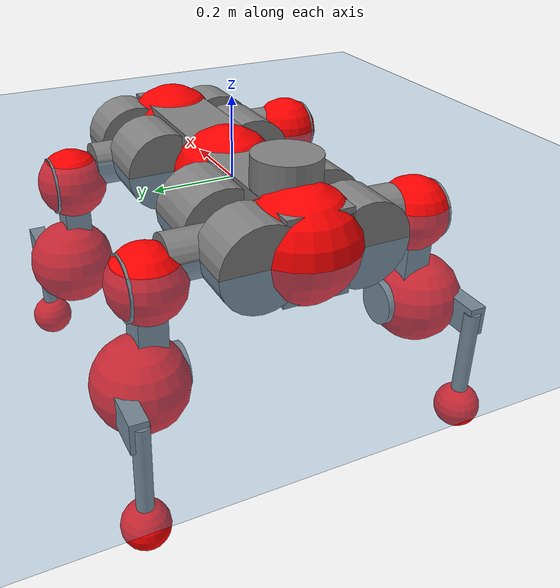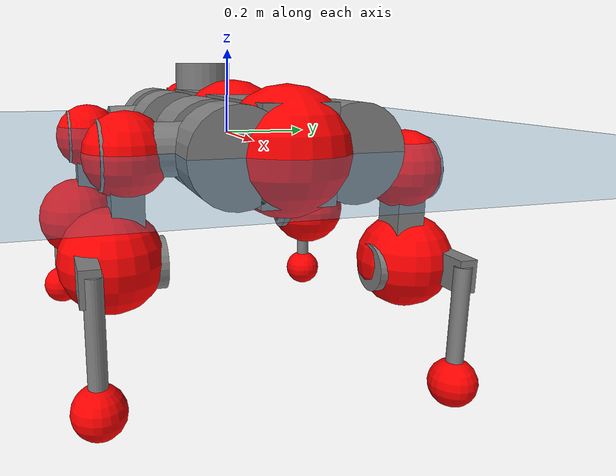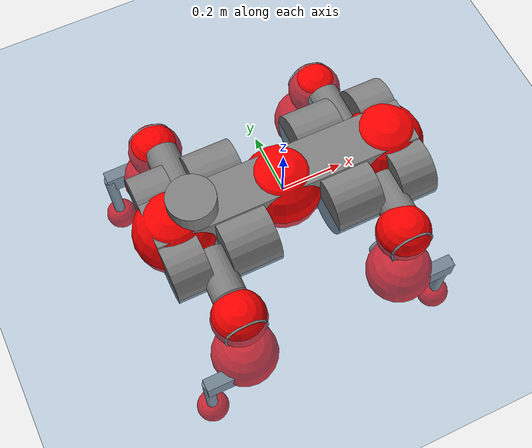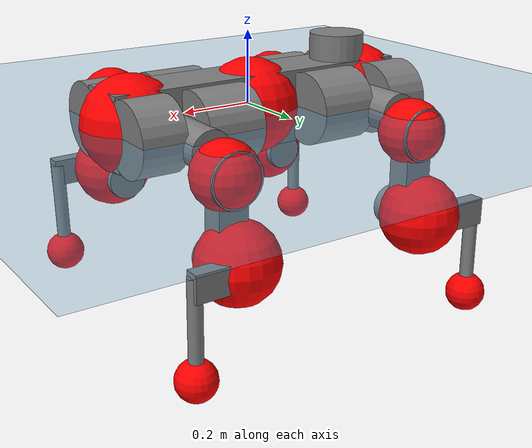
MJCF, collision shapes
<mujoco model="anymal_c">
  <compiler angle="radian" assetdir="assets" balanceinertia="true" inertiafromgeom="false"/>

  <option timestep="0.005" density="1.2" viscosity="2e-05"/>

  <size nkey="1"/>

  <visual>
    <quality shadowsize="8192"/>
    <map shadowclip="0.5"/>
  </visual>

  <default>
    <default class="/">
      <material specular="0" shininess="0.25"/>
      <geom contype="0" conaffinity="0" group="1" solref="-1000 -80"/>
      <site size="0.01 0.005 0.005" group="5"/>
      <general forcelimited="true" forcerange="-80 80" biastype="affine" gainprm="80" biasprm="0 -80 -2"/>
      <default class="anymal_c">
        <joint armature="0.01" damping="0.01" frictionloss="0.1"/>
        <default class="visual">
          <geom type="mesh" group="2"/>
          <default class="visual_zflip"/>
        </default>
        <default class="collision">
          <geom type="cylinder" group="3"/>
          <default class="foot">
            <geom size="0.03 0 0" type="sphere" condim="6" priority="1" friction="0.8 0.02 0.01" solimp="0.015 1 0.03"/>
          </default>
        </default>
      </default>
      <default class="reward_collision_sphere">
        <geom group="5" rgba="1 0 0 1"/>
      </default>
    </default>
  </default>

  <asset>
    <texture type="skybox" colorspace="auto" name="//unnamed_texture_0" builtin="gradient" rgb1="0.95 0.95 0.95" rgb2="0.95 0.95 0.95" width="100" height="600"/>
    <texture type="2d" colorspace="auto" name="texplane" builtin="checker" rgb1="0.345 0.575 0.748" rgb2="0.345 0.575 0.748" markrgb="1 1 1" width="512" height="512"/>
    <texture type="2d" colorspace="linear" name="base" file="base.png"/>
    <texture type="2d" colorspace="linear" name="top_shell" file="top_shell.png"/>
    <texture type="2d" colorspace="linear" name="bottom_shell" file="bottom_shell.png"/>
    <texture type="2d" colorspace="linear" name="remote" file="remote.png"/>
    <texture type="2d" colorspace="linear" name="hatch" file="hatch.png"/>
    <texture type="2d" colorspace="linear" name="handle" file="handle.png"/>
    <texture type="2d" colorspace="linear" name="face" file="face.png"/>
    <texture type="2d" colorspace="linear" name="battery" file="battery.png"/>
    <texture type="2d" colorspace="linear" name="lidar_cage" file="lidar_cage.png"/>
    <texture type="2d" colorspace="linear" name="depth_camera" file="depth_camera.png"/>
    <texture type="2d" colorspace="linear" name="wide_angle_camera" file="wide_angle_camera.png"/>
    <texture type="2d" colorspace="linear" name="lidar" file="lidar.png"/>
    <texture type="2d" colorspace="linear" name="drive" file="drive.png"/>
    <texture type="2d" colorspace="linear" name="hip_l" file="hip_l.png"/>
    <texture type="2d" colorspace="linear" name="shank_l" file="shank_l.png"/>
    <texture type="2d" colorspace="linear" name="foot" file="foot.png"/>
    <texture type="2d" colorspace="linear" name="thigh" file="thigh.png"/>
    <texture type="2d" colorspace="linear" name="shank_r" file="shank_r.png"/>
    <texture type="2d" colorspace="linear" name="hip_r" file="hip_r.png"/>
    <material name="MatPlane" class="/" texture="texplane" texuniform="true" texrepeat="2 2" specular="0.9" shininess="0.5"/>
    <material name="black_plastic" class="/" rgba="0.007 0.007 0.007 1"/>
    <material name="green" class="/" rgba="0.052 0.178 0.033 1"/>
    <material name="red" class="/" rgba="0.178 0.006 0.005 1"/>
    <material name="yellow" class="/" rgba="0.178 0.119 0.006 1"/>
    <material name="lwl" class="/" rgba="0.8 0.8 0.8 1"/>
    <material name="base" class="/" texture="base"/>
    <material name="top_shell" class="/" texture="top_shell"/>
    <material name="bottom_shell" class="/" texture="bottom_shell"/>
    <material name="hip_l" class="/" texture="hip_l"/>
    <material name="thigh" class="/" texture="thigh"/>
    <material name="shank_l" class="/" texture="shank_l"/>
    <material name="foot" class="/" texture="foot"/>
    <material name="hip_r" class="/" texture="hip_r"/>
    <material name="shank" class="/" texture="shank_r"/>
    <material name="hatch" class="/" texture="hatch"/>
    <material name="remote" class="/" texture="remote"/>
    <material name="handle" class="/" texture="handle"/>
    <material name="face" class="/" texture="face"/>
    <material name="depth_camera" class="/" texture="depth_camera"/>
    <material name="wide_angle_camera" class="/" texture="wide_angle_camera"/>
    <material name="battery" class="/" texture="battery"/>
    <material name="lidar_cage" class="/" texture="lidar_cage"/>
    <material name="lidar" class="/" texture="lidar"/>
    <material name="drive" class="/" texture="drive"/>
    <mesh name="base_0" class="/" file="base_0.obj"/>
    <mesh name="base_1" class="/" file="base_1.obj"/>
    <mesh name="base_2" class="/" file="base_2.obj"/>
    <mesh name="base_3" class="/" file="base_3.obj"/>
    <mesh name="base_4" class="/" file="base_4.obj"/>
    <mesh name="base_5" class="/" file="base_5.obj"/>
    <mesh name="top_shell" class="/" file="top_shell.obj"/>
    <mesh name="bottom_shell" class="/" file="bottom_shell.obj"/>
    <mesh name="remote" class="/" file="remote.obj"/>
    <mesh name="handle" class="/" file="handle.obj"/>
    <mesh name="face" class="/" file="face.obj"/>
    <mesh name="wide_angle_camera" class="/" file="wide_angle_camera.obj"/>
    <mesh name="depth_camera" class="/" file="depth_camera.obj"/>
    <mesh name="battery" class="/" file="battery.obj"/>
    <mesh name="lidar_cage" class="/" file="lidar_cage.obj"/>
    <mesh name="lidar" class="/" file="lidar.obj"/>
    <mesh name="drive" class="/" file="drive.obj"/>
    <mesh name="hip_l" class="/" file="hip_l.obj"/>
    <mesh name="thigh" class="/" file="thigh.obj"/>
    <mesh name="shank_l" class="/" file="shank_l.obj"/>
    <mesh name="foot" class="/" file="foot.obj"/>
    <mesh name="hip_r" class="/" file="hip_r.obj"/>
    <mesh name="hatch" class="/" file="hatch.obj"/>
    <mesh name="shank_r" class="/" file="shank_r.obj"/>
  </asset>

  <worldbody>
    <geom name="floor" class="/" size="100 100 0.125" type="plane" group="0" material="MatPlane"/>
    <light name="toplight_shadow" class="/" pos="0 0 5" dir="0.0990148 0.0990148 -0.990148" type="directional" ambient="0.04 0.04 0.04" diffuse="0.55 0.55 0.55" specular="0.12 0.12 0.12"/>
    <light name="toplight_fill" class="/" pos="0 0 5" dir="0.0990148 0.0990148 -0.990148" type="directional" castshadow="false" ambient="0.04 0.04 0.04" diffuse="0.3 0.3 0.3" specular="0.08 0.08 0.08"/>
    <body name="trunk" childclass="anymal_c" pos="0.000439719 0.0129031 -0.00321821" quat="1 0.000163412 0.000149131 0.000127861">
      <inertial pos="-0.00472636 0.0136566 0.0417042" quat="0.42614 0.509433 0.545348 0.51135" mass="25.6578" diaginertia="0.239025 10.197 0.0662898"/>
      <joint name="//unnamed_joint_0" type="free" armature="0" damping="0" frictionloss="0"/>
      <geom name="//unnamed_geom_1" class="visual" material="green" mesh="base_0"/>
      <geom name="//unnamed_geom_2" class="visual" material="yellow" mesh="base_1"/>
      <geom name="//unnamed_geom_3" class="visual" material="red" mesh="base_2"/>
      <geom name="//unnamed_geom_4" class="visual" material="black_plastic" mesh="base_3"/>
      <geom name="//unnamed_geom_5" class="visual" material="lwl" mesh="base_4"/>
      <geom name="//unnamed_geom_6" class="visual" material="base" mesh="base_5"/>
      <geom name="trunk_1" class="collision" size="0.318286 0.0768276 0.0987783" type="box"/>
      <geom name="trunk_2" class="collision" size="0.0987783 0.0795714" pos="0.174652 0.118986 0" quat="0.707107 0 0.707107 0"/>
      <geom name="trunk_3" class="collision" size="0.0987783 0.0795714" pos="-0.174652 0.118986 0" quat="0.707107 0 0.707107 0"/>
      <geom name="trunk_4" class="collision" size="0.0987783 0.0795714" pos="0.174652 -0.118986 0" quat="0.707107 0 0.707107 0"/>
      <geom name="trunk_5" class="collision" size="0.0987783 0.0795714" pos="-0.174652 -0.118986 0" quat="0.707107 0 0.707107 0"/>
      <geom name="//unnamed_geom_12" class="visual" material="top_shell" mesh="top_shell"/>
      <geom name="//unnamed_geom_13" class="visual" material="bottom_shell" mesh="bottom_shell"/>
      <geom name="//unnamed_geom_14" class="visual" material="remote" mesh="remote"/>
      <geom name="//unnamed_geom_15" class="visual" material="handle" mesh="handle"/>
      <geom name="//unnamed_geom_16" class="visual" pos="0.332842 0 0" quat="1 0 0 0" material="face" mesh="face"/>
      <geom name="trunk_6" class="collision" size="0.0603645 0.0768276 0.0987783" pos="0.377007 0 0" type="box"/>
      <geom name="//unnamed_geom_18" class="collision" size="0.0987783 0.0603645" pos="0.377007 0.118986 0" quat="0.707107 0 0.707107 0"/>
      <geom name="//unnamed_geom_19" class="collision" size="0.0987783 0.0603645" pos="0.377007 -0.118986 0" quat="0.707107 0 0.707107 0"/>
      <geom name="//unnamed_geom_20" class="visual" pos="0.370703 0 -0.0229623" quat="0.965926 0 0.258819 0" material="depth_camera" mesh="depth_camera"/>
      <geom name="//unnamed_geom_21" class="visual" pos="0.411937 0 0.0118235" material="wide_angle_camera" mesh="wide_angle_camera"/>
      <geom name="//unnamed_geom_22" class="visual_zflip" pos="-0.332842 0 0" quat="0 0 0 1" material="face" mesh="face"/>
      <geom name="trunk_7" class="collision" size="0.0603645 0.0768276 0.0987783" pos="-0.377007 0 0" quat="0 0 0 1" type="box"/>
      <geom name="//unnamed_geom_24" class="collision" size="0.0987783 0.0603645" pos="-0.377007 -0.118986 0" quat="0 -0.707107 0 0.707107"/>
      <geom name="//unnamed_geom_25" class="collision" size="0.0987783 0.0603645" pos="-0.377007 0.118986 0" quat="0 -0.707107 0 0.707107"/>
      <geom name="//unnamed_geom_26" class="visual" pos="-0.370703 0 -0.0229623" quat="0 -0.258819 0 0.965926" material="depth_camera" mesh="depth_camera"/>
      <geom name="//unnamed_geom_27" class="visual_zflip" pos="-0.411937 0 0.0118235" quat="0 0 0 1" material="wide_angle_camera" mesh="wide_angle_camera"/>
      <geom name="//unnamed_geom_28" class="visual" material="battery" mesh="battery"/>
      <geom name="//unnamed_geom_29" class="visual" pos="0 0.141734 0.0230442" quat="0.683013 -0.183013 0.183013 0.683013" material="depth_camera" mesh="depth_camera"/>
      <geom name="//unnamed_geom_30" class="visual" pos="0 -0.141734 0.0230442" quat="0.683013 0.183013 0.183013 -0.683013" material="depth_camera" mesh="depth_camera"/>
      <geom name="//unnamed_geom_31" class="visual" pos="-0.292291 0 0.0580511" quat="1 0 0 0" material="lidar_cage" mesh="lidar_cage"/>
      <geom name="trunk_8" class="collision" size="0.0768276 0.0658522" pos="-0.292291 0 0.10544"/>
      <geom name="//unnamed_geom_33" class="visual" pos="-0.292291 0.000352332 0.112311" quat="0.707107 0 0 -0.707107" material="lidar" mesh="lidar"/>
      <geom name="//unnamed_geom_34" class="visual" pos="0.240818 0.176456 1.56975e-08" quat="0.258819 0.965926 0 0" material="drive" mesh="drive"/>
      <geom name="//unnamed_geom_35" class="visual" pos="0.240818 -0.176456 -1.56975e-08" quat="0.258819 -0.965926 0 0" material="drive" mesh="drive"/>
      <geom name="//unnamed_geom_36" class="visual" pos="-0.240818 0.176456 -1.56975e-08" quat="0 0 0.965926 -0.258819" material="drive" mesh="drive"/>
      <geom name="//unnamed_geom_37" class="visual" pos="-0.240818 -0.176456 1.56975e-08" quat="0 0 -0.965926 -0.258819" material="drive" mesh="drive"/>
      <geom name="//unnamed_geom_38" class="visual" pos="0.0931475 0 0.0576562" quat="1 0 0 0" material="hatch" mesh="hatch"/>
      <geom name="//unnamed_geom_39" class="reward_collision_sphere" size="0.131704"/>
      <geom name="//unnamed_geom_40" class="reward_collision_sphere" size="0.131704" pos="0.361348 0 0"/>
      <geom name="//unnamed_geom_41" class="reward_collision_sphere" size="0.131704" pos="-0.361348 0 0"/>
      <site name="imu" pos="0.136956 -0.036697 0.100987" size="0.0109754"/>
      <camera name="track" pos="0 -3.39961 0" quat="0.707107 0.707107 0 0" mode="trackcom"/>
      <camera name="ego_camera" pos="0.361348 0 -0.0315924" quat="-0.5 -0.5 0.5 0.5"/>
      <body name="LF_HIP" pos="0.229481 0.159656 -0.014843" quat="0.260465 0.965462 -0.00176335 0.00620446">
        <inertial pos="0.0498539 -0.0264635 -0.0159092" quat="-0.134145 0.70001 -0.127068 0.689815" mass="4.35319" diaginertia="0.00190988 0.0760701 0.000965565"/>
        <joint name="LF_HAA" pos="0 0 0" axis="0.999993 0.00288848 0.00220837" range="-1.06883 0.295341" armature="0.0129304" damping="0.0734264" frictionloss="0.046767"/>
        <geom name="//unnamed_geom_42" class="visual" pos="0 0.000923412 -0.00015167" quat="0.258819 -0.965926 0 0" material="hip_l" mesh="hip_l"/>
        <geom name="//unnamed_geom_43" class="visual" pos="0.0480994 -0.0697673 -0.0335493" quat="0.183013 -0.683013 0.683013 0.183013" material="drive" mesh="drive"/>
        <geom name="//unnamed_geom_44" class="collision" size="0.0548768 0.0768276" pos="0.0480995 -0.0203293 -0.00545364" quat="-0.353553 -0.612372 0.612372 -0.353553"/>
        <body name="LF_THIGH" pos="0.0474724 -0.140587 -0.0279431" quat="0.1872 -0.679885 0.685432 0.181373">
          <inertial pos="0.0127763 -0.0105578 -0.198434" quat="0.985251 -0.060688 -0.118621 0.107363" mass="4.0474" diaginertia="0.00938616 0.41307 0.00135348"/>
          <joint name="LF_HFE" pos="0 0 0" axis="0.997836 -0.00381711 0.0656476" range="-3.32091 2.829" armature="0.00357352" damping="0" frictionloss="0.0673546"/>
          <geom name="//unnamed_geom_45" class="visual" pos="-0.0178429 -2.81163e-05 0" quat="0.707107 0 0 -0.707107" material="thigh" mesh="thigh"/>
          <geom name="//unnamed_geom_46" class="collision" size="0.0713399 0.0439015" pos="0.0321198 0 0" quat="0.5 0.5 -0.5 -0.5"/>
          <geom name="//unnamed_geom_47" class="collision" size="0.0411576 0.0329261 0.155097" pos="0.0240899 0 -0.111611" quat="0.707107 0 0 -0.707107" type="box"/>
          <geom name="//unnamed_geom_48" class="visual" pos="0.0805405 0 -0.225096" quat="1 0 0 0" material="drive" mesh="drive"/>
          <geom name="//unnamed_geom_49" class="collision" size="0.0548768 0.0768276" pos="0.0243308 0 -0.225096" quat="0.707107 0 0.707107 0"/>
          <geom name="//unnamed_geom_50" class="reward_collision_sphere" size="0.0878029" pos="0.0200749 0 0"/>
          <body name="LF_SHANK" pos="0.0875074 0.0153922 -0.217378" quat="0.999988 4.28291e-06 0.00478192 0.000893317">
            <inertial pos="-0.00681445 -0.103434 -0.0470093" quat="0.992933 -0.115714 -0.00285465 -0.0261841" mass="0.810317" diaginertia="0.00390531 0.104301 0.000411117"/>
            <joint name="LF_KFE" pos="0 0 0" axis="0.99998 -0.00587079 -0.00229285" range="-2.81102 3.12209" armature="0.0166432" damping="0.0152148" frictionloss="0.108981"/>
            <geom name="//unnamed_geom_51" class="visual" pos="-0.00581819 -0.0310229 0" quat="0.707107 0 0 -0.707107" material="shank_l" mesh="shank_l"/>
            <geom name="LF_kfe_act" class="collision" size="0.0658522 0.0219507" pos="0.0160599 0 0" quat="0.5 0.5 -0.5 -0.5"/>
            <geom name="//unnamed_geom_53" class="collision" size="0.0631073 0.0370419 0.0208532" pos="0.0160599 -0.097737 0" quat="0.5 0.5 -0.5 -0.5" type="box"/>
            <geom name="//unnamed_geom_54" class="visual" pos="0.0104805 -0.159495 -0.266932" quat="0.382683 0 0 -0.92388" material="foot" mesh="foot"/>
            <geom name="LF_calf" class="collision" size="0.0192069 0.155029" pos="0.0104791 -0.149498 -0.133466" quat="0.707107 0 0 -0.707107"/>
            <geom name="LF_foot" class="foot" size="0.0329691" pos="0.0104791 -0.149498 -0.249162" quat="0.707107 0 0 -0.707107"/>
            <geom name="//unnamed_geom_57" class="reward_collision_sphere" size="0.109754" pos="-0.0401498 0 0"/>
            <geom name="//unnamed_geom_58" class="reward_collision_sphere" size="0.0548768" pos="0.0104791 -0.149498 -0.249162"/>
            <site name="LF_foot" class="foot" pos="0.0104791 -0.149498 -0.249162" quat="0.707107 0 0 -0.707107" size="0.0109754"/>
          </body>
        </body>
      </body>
      <body name="RF_HIP" pos="0.239873 -0.167716 0.00835073" quat="0.259019 -0.965872 -0.00060362 -5.02112e-05">
        <inertial pos="0.0531681 0.0204295 -0.0123011" quat="0.139566 0.675516 0.139521 0.710446" mass="4.17278" diaginertia="0.00204038 0.0818423 0.000811099"/>
        <joint name="RF_HAA" pos="0 0 0" axis="0.998411 0.0304546 0.0474106" stiffness="0.0363964" range="-0.4823 0.757049" armature="0.00772546" damping="0" frictionloss="0.0691075"/>
        <geom name="//unnamed_geom_59" class="visual" pos="0 -0.000923404 -0.000151669" quat="0.258819 0.965926 0 0" material="hip_r" mesh="hip_r"/>
        <geom name="//unnamed_geom_60" class="visual" pos="0.0480995 0.0697673 -0.0335493" quat="0.183013 0.683013 0.683013 -0.183013" material="drive" mesh="drive"/>
        <geom name="//unnamed_geom_61" class="collision" size="0.0548768 0.0768276" pos="0.0480995 0.0203293 -0.00545364" quat="-0.353553 0.612372 0.612372 0.353553"/>
        <body name="RF_THIGH" pos="0.0327211 0.106442 -0.0433425" quat="0.184091 0.67985 0.686099 -0.18216">
          <inertial pos="0.0340322 0.0170601 -0.191459" quat="0.990529 -0.0578025 -0.0863251 0.0897777" mass="2.85928" diaginertia="0.00805215 0.350303 0.00117055"/>
          <joint name="RF_HFE" pos="0 0 0" axis="0.999963 0.00454875 -0.00726871" stiffness="0.0378779" range="-2.82512 3.14312" armature="0.00901056" damping="0" frictionloss="0.111662"/>
          <geom name="//unnamed_geom_62" class="visual" pos="-0.0178429 -2.81163e-05 0" quat="0.707107 0 0 -0.707107" material="thigh" mesh="thigh"/>
          <geom name="//unnamed_geom_63" class="collision" size="0.0713399 0.0439015" pos="0.0321198 0 0" quat="0.5 0.5 0.5 0.5"/>
          <geom name="//unnamed_geom_64" class="collision" size="0.0411576 0.0329261 0.155097" pos="0.0240899 0 -0.111611" quat="0.707107 0 0 0.707107" type="box"/>
          <geom name="//unnamed_geom_65" class="visual" pos="0.0805405 0 -0.225096" quat="1 0 0 0" material="drive" mesh="drive"/>
          <geom name="//unnamed_geom_66" class="collision" size="0.0548768 0.0768276" pos="0.0243308 0 -0.225096" quat="0.707107 0 0.707107 0"/>
          <geom name="//unnamed_geom_67" class="reward_collision_sphere" size="0.0878029" pos="0.0200749 0 0"/>
          <body name="RF_SHANK" pos="0.0964927 -0.00277191 -0.214378" quat="0.999975 -0.0042898 0.00187248 0.00537359">
            <inertial pos="-0.0033521 0.104036 -0.0754004" quat="0.991783 0.102784 0.0181392 0.0739847" mass="0.75354" diaginertia="0.00318381 0.132081 0.000316717"/>
            <joint name="RF_KFE" pos="0 0 0" axis="0.996463 0.0518785 0.0661128" stiffness="0.0416688" range="-3.22651 3.12871" armature="0.00313955" damping="0" frictionloss="0.187211"/>
            <geom name="//unnamed_geom_68" class="visual" pos="-0.00581816 0.0310228 0" quat="0.707107 0 0 0.707107" material="shank" mesh="shank_r"/>
            <geom name="RF_kfe_act" class="collision" size="0.0658522 0.0219507" pos="0.0160599 0 0" quat="0.5 0.5 0.5 0.5"/>
            <geom name="//unnamed_geom_70" class="collision" size="0.0631073 0.0370419 0.0208532" pos="0.0160599 0.097737 0" quat="0.5 0.5 0.5 0.5" type="box"/>
            <geom name="//unnamed_geom_71" class="visual" pos="0.0104777 0.159495 -0.266932" quat="0.382683 0 0 0.92388" material="foot" mesh="foot"/>
            <geom name="RF_calf" class="collision" size="0.0192069 0.155029" pos="0.0104791 0.149498 -0.133466" quat="0.707107 0 0 0.707107"/>
            <geom name="RF_foot" class="foot" size="0.0418101" pos="0.0104791 0.149498 -0.249162" quat="0.707107 0 0 0.707107"/>
            <geom name="//unnamed_geom_74" class="reward_collision_sphere" size="0.109754" pos="-0.0401498 0 0"/>
            <geom name="//unnamed_geom_75" class="reward_collision_sphere" size="0.0548768" pos="0.0104791 0.149498 -0.249162"/>
            <site name="RF_foot" class="foot" pos="0.0104791 0.149498 -0.249162" quat="0.707107 0 0 0.707107" size="0.0109754"/>
          </body>
        </body>
      </body>
      <body name="LH_HIP" pos="-0.244245 0.180789 -0.00306978" quat="0.00148334 0.00129719 0.966716 -0.255843">
        <inertial pos="0.0449156 0.0396153 -0.0164501" quat="0.13564 0.693451 0.150891 0.691346" mass="3.02044" diaginertia="0.00174985 0.0622743 0.000913028"/>
        <joint name="LH_HAA" pos="0 0 0" axis="0.999511 0.0172634 0.0260693" stiffness="0.0296682" range="-0.603123 0.884916" armature="0.0104572" damping="0.00339462" frictionloss="0.0818602"/>
        <geom name="//unnamed_geom_76" class="visual" pos="0 -0.000923404 -0.000151669" quat="-0.258819 -0.965926 0 0" material="hip_r" mesh="hip_r"/>
        <geom name="//unnamed_geom_77" class="visual" pos="0.0480995 0.0697673 -0.0335493" quat="0.183013 0.683013 0.683013 -0.183013" material="drive" mesh="drive"/>
        <geom name="//unnamed_geom_78" class="collision" size="0.0548768 0.0768276" pos="0.0480995 0.0203293 -0.00545364" quat="-0.353553 0.612372 0.612372 0.353553"/>
        <body name="LH_THIGH" pos="0.0589442 0.122003 -0.0173076" quat="0.18537 0.683467 0.681808 -0.183436">
          <inertial pos="0.0243762 0.00337799 -0.178121" quat="0.988396 -0.0457043 -0.0804947 0.120434" mass="2.87369" diaginertia="0.00982938 0.343355 0.00120889"/>
          <joint name="LH_HFE" pos="0 0 0" axis="0.999832 -0.0105486 -0.0149865" stiffness="0.0135064" range="-2.88334 2.92293" armature="0.0148949" damping="0.0790701" frictionloss="0.127938"/>
          <geom name="//unnamed_geom_79" class="visual" pos="-0.0178429 -2.81163e-05 0" quat="0.707107 0 0 -0.707107" material="thigh" mesh="thigh"/>
          <geom name="//unnamed_geom_80" class="collision" size="0.0713399 0.0439015" pos="0.0321198 0 0" quat="0.5 0.5 -0.5 -0.5"/>
          <geom name="//unnamed_geom_81" class="collision" size="0.0411576 0.0329261 0.155097" pos="0.0240899 0 -0.111611" quat="0.707107 0 0 -0.707107" type="box"/>
          <geom name="//unnamed_geom_82" class="visual" pos="0.0805405 0 -0.225096" quat="1 0 0 0" material="drive" mesh="drive"/>
          <geom name="//unnamed_geom_83" class="collision" size="0.0548768 0.0768276" pos="0.0243308 0 -0.225096" quat="0.707107 0 0.707107 0"/>
          <geom name="//unnamed_geom_84" class="reward_collision_sphere" size="0.0878029" pos="0.0200749 0 0"/>
          <body name="LH_SHANK" pos="0.0910357 0.0172097 -0.229836" quat="0.999996 -0.00152076 -0.00210136 -0.00133585">
            <inertial pos="0.0075739 0.103619 -0.0595663" quat="0.992686 0.117126 0.0108727 0.0271671" mass="0.584137" diaginertia="0.00241346 0.117194 0.00029931"/>
            <joint name="LH_KFE" pos="0 0 0" axis="0.99834 -0.0495974 0.0292686" range="-3.47622 3.39362" armature="0.0102231" damping="0.050669" frictionloss="0.11693"/>
            <geom name="//unnamed_geom_85" class="visual" pos="-0.00581816 0.0310228 0" quat="-0.707107 0 0 -0.707107" material="shank" mesh="shank_r"/>
            <geom name="LH_kfe_act" class="collision" size="0.0658522 0.0219507" pos="0.0160599 0 0" quat="0.5 0.5 -0.5 -0.5"/>
            <geom name="//unnamed_geom_87" class="collision" size="0.0631073 0.0370419 0.0208532" pos="0.0160599 0.097737 0" quat="0.5 0.5 -0.5 -0.5" type="box"/>
            <geom name="//unnamed_geom_88" class="visual" pos="0.0104777 0.159495 -0.266932" quat="-0.382683 0 0 -0.92388" material="foot" mesh="foot"/>
            <geom name="LH_calf" class="collision" size="0.0192069 0.155029" pos="0.0104791 0.149498 -0.133466" quat="0.707107 0 0 -0.707107"/>
            <geom name="LH_foot" class="foot" size="0.0233265" pos="0.0104791 0.149498 -0.249162" quat="0.707107 0 0 -0.707107"/>
            <geom name="//unnamed_geom_91" class="reward_collision_sphere" size="0.109754" pos="-0.0401498 0 0"/>
            <geom name="//unnamed_geom_92" class="reward_collision_sphere" size="0.0548768" pos="0.0104791 0.149498 -0.249162"/>
            <site name="LH_foot" class="foot" pos="0.0104791 0.149498 -0.249162" quat="0.707107 0 0 -0.707107" size="0.0109754"/>
          </body>
        </body>
      </body>
      <body name="RH_HIP" pos="-0.247743 -0.172878 0.00618732" quat="-0.00161349 -0.00383038 -0.96441 -0.264379">
        <inertial pos="0.0392774 -0.0400371 0.00474446" quat="-0.123336 0.692791 -0.154297 0.693557" mass="3.11636" diaginertia="0.00143629 0.0549711 0.000711993"/>
        <joint name="RH_HAA" pos="0 0 0" axis="0.997346 0.0728098 0.000163099" range="-0.641397 0.796728" armature="0.0107272" damping="0.0410987" frictionloss="0.0902773"/>
        <geom name="//unnamed_geom_93" class="visual" pos="0 0.000923412 -0.00015167" quat="-0.258819 0.965926 0 0" material="hip_l" mesh="hip_l"/>
        <geom name="//unnamed_geom_94" class="visual" pos="0.0480994 -0.0697673 -0.0335493" quat="-0.183013 0.683013 -0.683013 -0.183013" material="drive" mesh="drive"/>
        <geom name="//unnamed_geom_95" class="collision" size="0.0548768 0.0768276" pos="0.0480995 -0.0203293 -0.00545364" quat="0.353553 0.612372 -0.612372 0.353553"/>
        <body name="RH_THIGH" pos="0.0471195 -0.135315 -0.0411359" quat="-0.183957 0.678346 -0.68609 -0.18785">
          <inertial pos="0.0252639 0.015152 -0.204543" quat="0.991811 0.00572847 -0.0698132 0.106795" mass="4.46466" diaginertia="0.0109863 0.46898 0.00146302"/>
          <joint name="RH_HFE" pos="0 0 0" axis="0.996952 0.0760703 0.0173421" stiffness="0.038286" range="-3.23189 2.939" armature="0.0121261" damping="0" frictionloss="0.0831538"/>
          <geom name="//unnamed_geom_96" class="visual" pos="-0.0178429 -2.81163e-05 0" quat="0.707107 0 0 -0.707107" material="thigh" mesh="thigh"/>
          <geom name="//unnamed_geom_97" class="collision" size="0.0713399 0.0439015" pos="0.0321198 0 0" quat="0.5 0.5 0.5 0.5"/>
          <geom name="//unnamed_geom_98" class="collision" size="0.0411576 0.0329261 0.155097" pos="0.0240899 0 -0.111611" quat="0.707107 0 0 0.707107" type="box"/>
          <geom name="//unnamed_geom_99" class="visual" pos="0.0805405 0 -0.225096" quat="1 0 0 0" material="drive" mesh="drive"/>
          <geom name="//unnamed_geom_100" class="collision" size="0.0548768 0.0768276" pos="0.0243308 0 -0.225096" quat="0.707107 0 0.707107 0"/>
          <geom name="//unnamed_geom_101" class="reward_collision_sphere" size="0.0878029" pos="0.0200749 0 0"/>
          <body name="RH_SHANK" pos="0.0984921 -0.00575274 -0.229831" quat="0.99999 -0.0010696 -0.00379141 -0.00208851">
            <inertial pos="-0.0130944 -0.10471 -0.0571725" quat="0.988136 -0.151252 -0.0167439 -0.0207485" mass="0.792876" diaginertia="0.00271012 0.139996 0.000316966"/>
            <joint name="RH_KFE" pos="0 0 0" axis="0.996917 -0.0678885 -0.0393504" stiffness="0.0476074" range="-2.86053 2.82994" armature="0.019083" damping="0.00809015" frictionloss="0.104133"/>
            <geom name="//unnamed_geom_102" class="visual" pos="-0.00581819 -0.0310229 0" quat="0.707107 0 0 -0.707107" material="shank_l" mesh="shank_l"/>
            <geom name="RH_kfe_act" class="collision" size="0.0658522 0.0219507" pos="0.0160599 0 0" quat="0.5 0.5 0.5 0.5"/>
            <geom name="//unnamed_geom_104" class="collision" size="0.0631073 0.0370419 0.0208532" pos="0.0160599 -0.097737 0" quat="0.5 0.5 0.5 0.5" type="box"/>
            <geom name="//unnamed_geom_105" class="visual" pos="0.0104805 -0.159495 -0.266932" quat="0.382683 0 0 -0.92388" material="foot" mesh="foot"/>
            <geom name="RH_calf" class="collision" size="0.0192069 0.155029" pos="0.0104791 -0.149498 -0.133466" quat="0.707107 0 0 0.707107"/>
            <geom name="RH_foot" class="foot" size="0.0454656" pos="0.0104791 -0.149498 -0.249162" quat="0.707107 0 0 0.707107"/>
            <geom name="//unnamed_geom_108" class="reward_collision_sphere" size="0.109754" pos="-0.0401498 0 0"/>
            <geom name="//unnamed_geom_109" class="reward_collision_sphere" size="0.0548768" pos="0.0104791 -0.149498 -0.249162"/>
            <site name="RH_foot" class="foot" pos="0.0104791 -0.149498 -0.249162" quat="0.707107 0 0 0.707107" size="0.0109754"/>
          </body>
        </body>
      </body>
    </body>
  </worldbody>

  <contact>
    <pair class="/" geom1="floor" geom2="LF_foot" name="//unnamed_contact_0"/>
    <pair class="/" geom1="floor" geom2="RF_foot" name="//unnamed_contact_1"/>
    <pair class="/" geom1="floor" geom2="LH_foot" name="//unnamed_contact_2"/>
    <pair class="/" geom1="floor" geom2="RH_foot" name="//unnamed_contact_3"/>
  </contact>

  <actuator>
    <general name="LF_HAA" class="/" joint="LF_HAA" forcerange="-30.7926 30.7926" gainprm="53.5043" biasprm="0 -53.5043 -1.77165"/>
    <general name="LF_HFE" class="/" joint="LF_HFE" forcerange="-125.8 125.8" gainprm="53.5043" biasprm="0 -53.5043 -1.77165"/>
    <general name="LF_KFE" class="/" joint="LF_KFE" forcerange="-110.174 110.174" gainprm="53.5043" biasprm="0 -53.5043 -1.77165"/>
    <general name="RF_HAA" class="/" joint="RF_HAA" forcerange="-36.3146 36.3146" gainprm="53.5043" biasprm="0 -53.5043 -1.77165"/>
    <general name="RF_HFE" class="/" joint="RF_HFE" forcerange="-36.1997 36.1997" gainprm="53.5043" biasprm="0 -53.5043 -1.77165"/>
    <general name="RF_KFE" class="/" joint="RF_KFE" forcerange="-50.4582 50.4582" gainprm="53.5043" biasprm="0 -53.5043 -1.77165"/>
    <general name="LH_HAA" class="/" joint="LH_HAA" forcerange="-106.57 106.57" gainprm="53.5043" biasprm="0 -53.5043 -1.77165"/>
    <general name="LH_HFE" class="/" joint="LH_HFE" forcerange="-75.0456 75.0456" gainprm="53.5043" biasprm="0 -53.5043 -1.77165"/>
    <general name="LH_KFE" class="/" joint="LH_KFE" forcerange="-122.107 122.107" gainprm="53.5043" biasprm="0 -53.5043 -1.77165"/>
    <general name="RH_HAA" class="/" joint="RH_HAA" forcerange="-141.937 141.937" gainprm="53.5043" biasprm="0 -53.5043 -1.77165"/>
    <general name="RH_HFE" class="/" joint="RH_HFE" forcerange="-101.229 101.229" gainprm="53.5043" biasprm="0 -53.5043 -1.77165"/>
    <general name="RH_KFE" class="/" joint="RH_KFE" forcerange="-87.0358 87.0358" gainprm="53.5043" biasprm="0 -53.5043 -1.77165"/>
  </actuator>

  <sensor>
    <gyro site="imu" name="imu_angular_velocity"/>
    <velocimeter site="imu" name="imu_linear_velocity"/>
    <framelinvel objtype="site" objname="LF_foot" name="LF_foot_global_linear_velocity"/>
    <framelinvel objtype="site" objname="RF_foot" name="RF_foot_global_linear_velocity"/>
    <framelinvel objtype="site" objname="LH_foot" name="LH_foot_global_linear_velocity"/>
    <framelinvel objtype="site" objname="RH_foot" name="RH_foot_global_linear_velocity"/>
  </sensor>

  <keyframe>
    <key name="home" qpos="0 0 0.55 1 0 0 0 0 0.4 -0.8 0 -0.4 0.8 0 -0.4 0.8 0 0.4 -0.8"/>
  </keyframe>
</mujoco>
